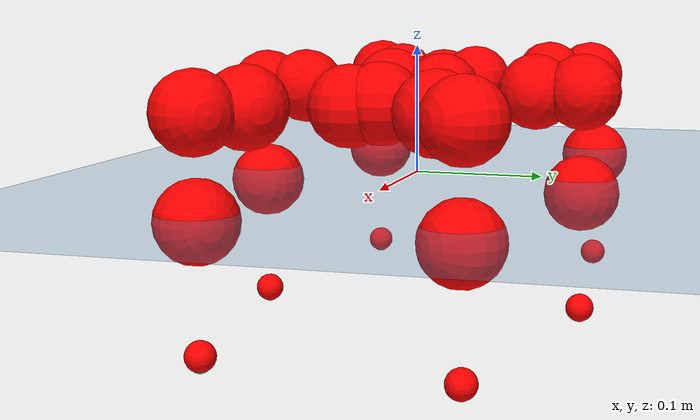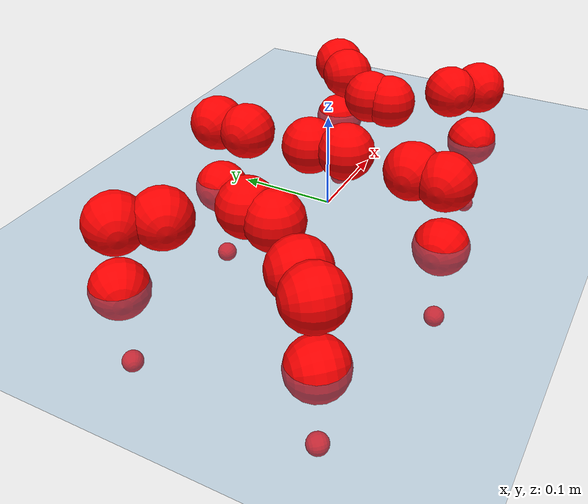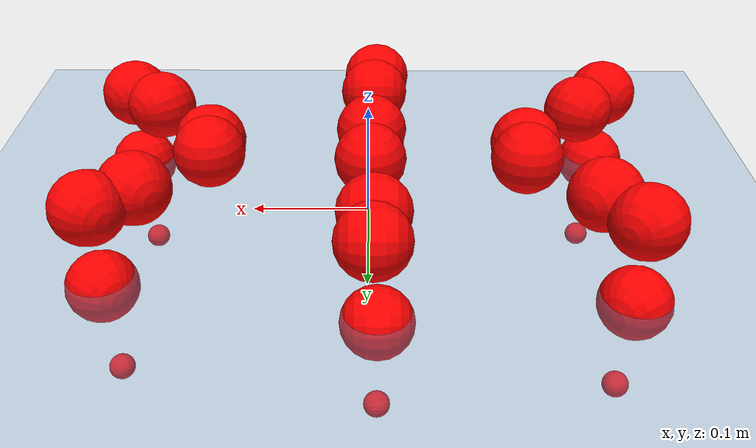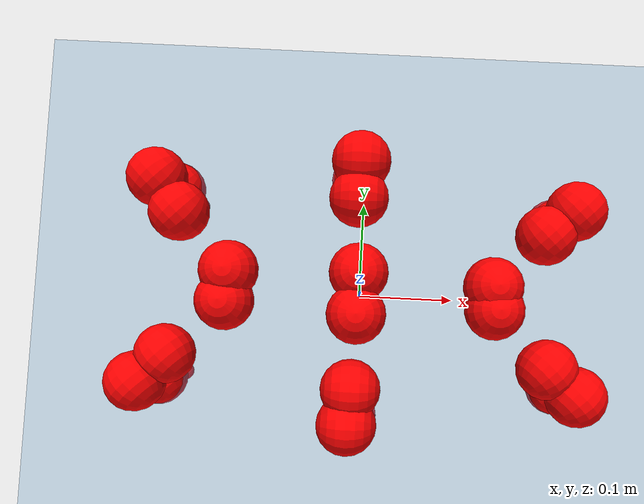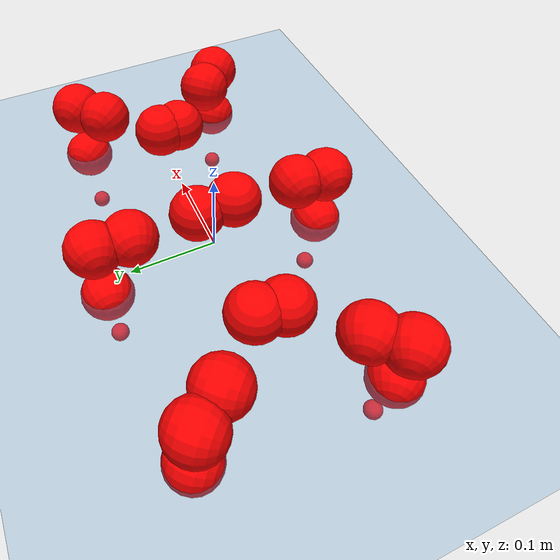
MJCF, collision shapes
<mujoco model="Golem">
  <compiler angle="radian" assetdir="assets" balanceinertia="true" inertiafromgeom="false"/>

  <option timestep="0.005" density="1.2" viscosity="2e-05"/>

  <size nkey="1"/>

  <visual>
    <quality shadowsize="8192"/>
    <map shadowclip="0.5"/>
  </visual>

  <default>
    <default class="/">
      <joint armature="0.01" damping="0.01" frictionloss="0.01"/>
      <geom contype="0" conaffinity="0" group="1" solref="-1000 -80"/>
      <site size="0.01 0.005 0.005" group="5"/>
      <general forcelimited="true" biastype="affine" gainprm="25" biasprm="0 -25 -0.5"/>
      <default class="visual">
        <geom type="mesh" group="2"/>
      </default>
      <default class="collision">
        <geom group="3"/>
      </default>
      <default class="foot">
        <geom size="0.01 0 0" condim="6" group="4" priority="1" solimp="0.015 1 0.01"/>
      </default>
      <default class="reward_collision_sphere">
        <geom group="5" rgba="1 0 0 1"/>
      </default>
    </default>
  </default>

  <asset>
    <texture type="skybox" colorspace="auto" name="//unnamed_texture_0" builtin="gradient" rgb1="0.95 0.95 0.95" rgb2="0.95 0.95 0.95" width="100" height="600"/>
    <texture type="2d" colorspace="auto" name="texplane" builtin="checker" rgb1="0.345 0.575 0.748" rgb2="0.345 0.575 0.748" markrgb="1 1 1" width="512" height="512"/>
    <material name="MatPlane" class="/" texture="texplane" texuniform="true" texrepeat="2 2" specular="0.9"/>
    <mesh name="body" class="/" file="body.stl" scale="0.001 0.001 0.001"/>
    <mesh name="coxa" class="/" file="coxa.stl" scale="0.001 0.001 0.001"/>
    <mesh name="femur" class="/" file="femur.stl" scale="0.001 0.001 0.001"/>
    <mesh name="tibia" class="/" file="tibia.stl" scale="0.001 0.001 0.001"/>
    <mesh name="tarsus" class="/" file="tarsus.stl" scale="0.001 0.001 0.001"/>
  </asset>

  <worldbody>
    <geom name="floor" class="/" size="100 100 0.125" type="plane" group="0" material="MatPlane"/>
    <light name="toplight_shadow" class="/" pos="0 0 5" dir="0.0990148 0.0990148 -0.990148" type="directional" ambient="0.04 0.04 0.04" diffuse="0.55 0.55 0.55" specular="0.12 0.12 0.12"/>
    <light name="toplight_fill" class="/" pos="0 0 5" dir="0.0990148 0.0990148 -0.990148" type="directional" castshadow="false" ambient="0.04 0.04 0.04" diffuse="0.3 0.3 0.3" specular="0.08 0.08 0.08"/>
    <body name="trunk" pos="0.000523395 -0.000515538 0.00130685" quat="1 -8.90605e-05 1.7422e-06 2.83549e-05">
      <inertial pos="0.00259495 0.000288243 -0.0022772" quat="0.999999 0.000742753 -0.00106135 0.000878364" mass="1.49742" diaginertia="0.0045066 5.95027e-05 0.0101797"/>
      <joint name="//unnamed_joint_0" type="free"/>
      <geom name="//unnamed_geom_1" class="/" pos="0 0 0.0640056" quat="1 0 0 0" type="mesh" rgba="0.9 0.9 0.9 1" mesh="body"/>
      <site name="imu" class="/" pos="0.114349 -0.0141069 0.100191" size="0.00737344"/>
      <camera name="track" class="/" pos="0 -0.722476 0" quat="0.707107 0.707107 0 0" mode="trackcom"/>
      <camera name="ego_camera" class="/" pos="0.110592 0 0.100009" quat="-0.5 -0.5 0.5 0.5"/>
      <body name="coxa_RR" pos="-0.151769 -0.0310526 0.0592891" quat="0.382616 8.32469e-05 3.42266e-05 -0.923907">
        <inertial pos="-0.000917572 0.000800675 0.00222334" quat="0.999909 -0.0119233 0.00179324 0.00611605" mass="0.0813424" diaginertia="0.00454376 6.26655e-05 0.0103854"/>
        <joint name="coxa_joint_RR" class="/" pos="0 0 0" axis="0.000445879 -0.000953172 -0.999999" stiffness="0.00283326" range="-3.18323 3.11462" armature="0.00743966" damping="0.00109075" frictionloss="0.00840996"/>
        <geom name="//unnamed_geom_2" class="/" type="mesh" rgba="0.2 0.2 0.2 1" mesh="coxa"/>
        <geom name="//unnamed_geom_3" class="reward_collision_sphere" size="0.0294938" pos="-0.0255212 0 0"/>
        <body name="femur_RR" pos="0.0515967 8.97924e-05 0.00193194" quat="0.500013 -0.500023 0.499907 0.500057">
          <inertial pos="7.26618e-05 0.000450942 -0.00114186" quat="0.999989 0.00332502 -0.00207241 -0.00268944" mass="0.0796436" diaginertia="0.00463991 6.41016e-05 0.00981717"/>
          <joint name="femur_joint_RR" class="/" pos="0 0 0" axis="0.00462053 0.0131529 -0.999903" range="-3.11437 3.1207" armature="0.00677248" damping="0" frictionloss="0.0066452"/>
          <geom name="//unnamed_geom_4" class="/" type="mesh" rgba="0.9 0.9 0.9 1" mesh="femur"/>
          <geom name="//unnamed_geom_5" class="reward_collision_sphere" size="0.0294938"/>
          <body name="tibia_RR" pos="-0.0013338 -0.0385895 0.000627808" quat="0.000744928 0.999999 -0.000830981 0.000514937">
            <inertial pos="0.0022144 0.00281906 -7.91871e-05" quat="0.99999 6.96279e-05 0.00357883 0.00273082" mass="0.0824148" diaginertia="0.00434749 6.12546e-05 0.00979588"/>
            <joint name="tibia_joint_RR" class="/" pos="0 0 0" axis="-0.00388863 0.00390801 0.999985" stiffness="0.00756555" range="-3.11929 3.11997" armature="0.00667526" damping="0.00380192" frictionloss="0.0073123"/>
            <geom name="//unnamed_geom_6" class="/" type="mesh" rgba="0.2 0.2 0.2 1" mesh="tibia"/>
            <geom name="//unnamed_geom_7" class="reward_collision_sphere" size="0.0294938"/>
            <body name="tarsus_RR" pos="0.0732223 0.00210206 -0.00151524" quat="0.999999 0.000534947 -0.000528254 0.00100717">
              <inertial pos="0.0493661 0.000279265 0.000329736" quat="0.503184 0.497617 0.498764 0.500418" mass="0.0835333" diaginertia="0.00476836 6.14807e-05 0.0107218"/>
              <joint name="tarsus_joint_RR" class="/" pos="0 0 0" axis="-0.00951239 -0.00203696 0.999953" stiffness="0.000278728" range="-3.19486 3.13655" armature="0.00686581" damping="0.00808804" frictionloss="0.00757475"/>
              <geom name="//unnamed_geom_8" class="/" type="mesh" rgba="0.9 0.9 0.9 1" mesh="tarsus"/>
              <geom name="foot_1" class="foot" size="0.00784704" pos="0.0952792 0 0" quat="0 -0.707107 0 0.707107"/>
              <geom name="//unnamed_geom_10" class="reward_collision_sphere" size="0.0294938"/>
              <geom name="//unnamed_geom_11" class="reward_collision_sphere" size="0.0110602" pos="0.091451 0 0"/>
              <site name="foot_1" class="foot" pos="0.0952792 0 0" quat="0 -0.707107 0 0.707107" size="0.00737344"/>
            </body>
          </body>
        </body>
      </body>
      <body name="coxa_RM" pos="-0.00322984 -0.0463216 0.066914" quat="0.707033 -0.000259643 -0.000582861 -0.70718">
        <inertial pos="0.00282313 -0.00152348 0.00281451" quat="0.99999 -0.00319002 0.00240022 0.00208537" mass="0.0768564" diaginertia="0.00431044 6.09765e-05 0.00988702"/>
        <joint name="coxa_joint_RM" class="/" pos="0 0 0" axis="-0.00487715 -0.00592478 -0.999971" range="-3.14824 3.17858" armature="0.00752036" damping="0.00931168" frictionloss="0.00644368"/>
        <geom name="//unnamed_geom_12" class="/" type="mesh" rgba="0.2 0.2 0.2 1" mesh="coxa"/>
        <geom name="//unnamed_geom_13" class="reward_collision_sphere" size="0.0294938" pos="-0.0255212 0 0"/>
        <body name="femur_RM" pos="0.0473514 -0.00220897 -0.00218676" quat="0.500039 -0.499916 0.499958 0.500087">
          <inertial pos="0.00276994 0.00119871 -0.000451796" quat="0.99998 0.000688272 -0.00634843 0.000341744" mass="0.0853712" diaginertia="0.0045451 6.12603e-05 0.00995957"/>
          <joint name="femur_joint_RM" class="/" pos="0 0 0" axis="-0.00547008 -0.00974401 -0.999938" range="-3.19637 3.15828" armature="0.00757725" damping="0.0220699" frictionloss="0.00835007"/>
          <geom name="//unnamed_geom_14" class="/" type="mesh" rgba="0.9 0.9 0.9 1" mesh="femur"/>
          <geom name="//unnamed_geom_15" class="reward_collision_sphere" size="0.0294938"/>
          <body name="tibia_RM" pos="0.0010922 -0.0347498 -0.00237237" quat="-0.00013099 1 8.92534e-05 9.69196e-06">
            <inertial pos="0.00254598 -0.00328501 -0.00154779" quat="0.999959 0.00505243 0.00337582 -0.00676591" mass="0.0803698" diaginertia="0.00448307 6.00905e-05 0.0101419"/>
            <joint name="tibia_joint_RM" class="/" pos="0 0 0" axis="0.00508958 -0.00171172 0.999986" range="-3.12774 3.08659" armature="0.0078106" damping="0.0213395" frictionloss="0.00754919"/>
            <geom name="//unnamed_geom_16" class="/" type="mesh" rgba="0.2 0.2 0.2 1" mesh="tibia"/>
            <geom name="//unnamed_geom_17" class="reward_collision_sphere" size="0.0294938"/>
            <body name="tarsus_RM" pos="0.0771221 0.000936163 -0.00152046" quat="1 -0.000148317 0.000353309 2.542e-05">
              <inertial pos="0.0541056 -0.00158725 0.000741069" quat="0.497618 0.490393 0.507462 0.504356" mass="0.0810231" diaginertia="0.00461622 6.3612e-05 0.00967766"/>
              <joint name="tarsus_joint_RM" class="/" pos="0 0 0" axis="-0.00115591 -0.00143973 0.999998" stiffness="0.00569966" range="-3.11999 3.1954" armature="0.00743727" damping="0.00980003" frictionloss="0.00699093"/>
              <geom name="//unnamed_geom_18" class="/" type="mesh" rgba="0.9 0.9 0.9 1" mesh="tarsus"/>
              <geom name="foot_2" class="foot" size="0.00772321" pos="0.0952792 0 0" quat="0 -0.707107 0 0.707107"/>
              <geom name="//unnamed_geom_20" class="reward_collision_sphere" size="0.0294938"/>
              <geom name="//unnamed_geom_21" class="reward_collision_sphere" size="0.0110602" pos="0.091451 0 0"/>
              <site name="foot_2" class="foot" pos="0.0952792 0 0" quat="0 -0.707107 0 0.707107" size="0.00737344"/>
            </body>
          </body>
        </body>
      </body>
      <body name="coxa_RF" pos="0.150157 -0.0286034 0.0630528" quat="0.92397 0.000347641 -0.000349122 -0.382466">
        <inertial pos="-0.00234185 2.54846e-05 0.00313694" quat="0.99992 0.00108864 -0.00997003 0.00766207" mass="0.0787592" diaginertia="0.00462563 6.25035e-05 0.0100469"/>
        <joint name="coxa_joint_RF" class="/" pos="0 0 0" axis="0.00369936 0.00477008 -0.999982" range="-3.19285 3.16287" armature="0.00638157" damping="0.0218447" frictionloss="0.00748353"/>
        <geom name="//unnamed_geom_22" class="/" type="mesh" rgba="0.2 0.2 0.2 1" mesh="coxa"/>
        <geom name="//unnamed_geom_23" class="reward_collision_sphere" size="0.0294938" pos="-0.0255212 0 0"/>
        <body name="femur_RF" pos="0.0502403 -0.00237549 0.00242033" quat="0.499928 -0.499491 0.500462 0.500118">
          <inertial pos="-0.000665478 -0.00247965 0.00127999" quat="0.999988 0.00180066 0.000436279 -0.00444312" mass="0.0788819" diaginertia="0.00430629 6.08872e-05 0.00989523"/>
          <joint name="femur_joint_RF" class="/" pos="0 0 0" axis="-0.00826847 0.00728805 -0.999939" range="-3.08787 3.13658" armature="0.00762537" damping="0" frictionloss="0.00688257"/>
          <geom name="//unnamed_geom_24" class="/" type="mesh" rgba="0.9 0.9 0.9 1" mesh="femur"/>
          <geom name="//unnamed_geom_25" class="reward_collision_sphere" size="0.0294938"/>
          <body name="tibia_RF" pos="0.00129852 -0.0381812 0.00295645" quat="0.00017012 0.999999 -0.00082319 0.000935709">
            <inertial pos="0.00110879 0.00297014 -0.00248237" quat="0.999912 -0.00672634 4.65606e-05 -0.0114016" mass="0.0809159" diaginertia="0.00449977 6.02111e-05 0.00967211"/>
            <joint name="tibia_joint_RF" class="/" pos="0 0 0" axis="-0.00578869 0.00552592 0.999968" stiffness="0.00687254" range="-3.16014 3.14472" armature="0.00651322" damping="0.00344322" frictionloss="0.0074082"/>
            <geom name="//unnamed_geom_26" class="/" type="mesh" rgba="0.2 0.2 0.2 1" mesh="tibia"/>
            <geom name="//unnamed_geom_27" class="reward_collision_sphere" size="0.0294938"/>
            <body name="tarsus_RF" pos="0.0720911 0.000236641 -0.00278485" quat="1 -0.000420683 -0.0003063 0.000468182">
              <inertial pos="0.0500898 2.43634e-05 0.000333131" quat="0.509908 0.499661 0.49438 0.495904" mass="0.0762664" diaginertia="0.00446473 6.0624e-05 0.00973939"/>
              <joint name="tarsus_joint_RF" class="/" pos="0 0 0" axis="-0.00419486 -0.00260755 0.999988" stiffness="0.000819083" range="-3.12118 3.16753" armature="0.00740756" damping="0.0148113" frictionloss="0.00835227"/>
              <geom name="//unnamed_geom_28" class="/" type="mesh" rgba="0.9 0.9 0.9 1" mesh="tarsus"/>
              <geom name="foot_3" class="foot" size="0.00786709" pos="0.0952792 0 0" quat="0 -0.707107 0 0.707107"/>
              <geom name="//unnamed_geom_30" class="reward_collision_sphere" size="0.0294938"/>
              <geom name="//unnamed_geom_31" class="reward_collision_sphere" size="0.0110602" pos="0.091451 0 0"/>
              <site name="foot_3" class="foot" pos="0.0952792 0 0" quat="0 -0.707107 0 0.707107" size="0.00737344"/>
            </body>
          </body>
        </body>
      </body>
      <body name="coxa_LR" pos="-0.148661 0.0352282 0.0627058" quat="0.38223 0.000527236 -0.000165726 0.924067">
        <inertial pos="0.00162015 -0.00168642 -0.00269001" quat="0.999934 -0.000696693 -0.0105645 0.00438954" mass="0.0819772" diaginertia="0.00453314 6.26378e-05 0.0101889"/>
        <joint name="coxa_joint_LR" class="/" pos="0 0 0" axis="-0.00328877 -0.000677912 -0.999994" range="-3.15701 3.12271" armature="0.00639547" damping="0.00944001" frictionloss="0.00755413"/>
        <geom name="//unnamed_geom_32" class="/" type="mesh" rgba="0.2 0.2 0.2 1" mesh="coxa"/>
        <geom name="//unnamed_geom_33" class="reward_collision_sphere" size="0.0294938" pos="-0.0255212 0 0"/>
        <body name="femur_LR" pos="0.0503458 -0.00277048 0.00204457" quat="0.500155 -0.499911 0.499477 0.500456">
          <inertial pos="0.00241837 -0.000127458 -0.00176891" quat="0.999996 0.00202489 0.00101188 0.00151695" mass="0.0808383" diaginertia="0.00448873 6.18653e-05 0.0104553"/>
          <joint name="femur_joint_LR" class="/" pos="0 0 0" axis="0.00315865 0.00140773 0.999994" range="-3.08417 3.14107" armature="0.00785106" damping="0.0037245" frictionloss="0.00754237"/>
          <geom name="//unnamed_geom_34" class="/" type="mesh" rgba="0.9 0.9 0.9 1" mesh="femur"/>
          <geom name="//unnamed_geom_35" class="reward_collision_sphere" size="0.0294938"/>
          <body name="tibia_LR" pos="0.00118943 -0.0404395 -0.00643583" quat="-1.77823e-05 1 5.46182e-05 -3.90024e-05">
            <inertial pos="0.00237373 -0.00370495 0.00381648" quat="0.999969 -0.00375508 0.00130345 -0.00681386" mass="0.0767755" diaginertia="0.00441288 6.30103e-05 0.00994368"/>
            <joint name="tibia_joint_LR" class="/" pos="0 0 0" axis="0.000605346 -0.000678005 -1" range="-3.10398 3.10644" armature="0.00701106" damping="0.0130394" frictionloss="0.00633039"/>
            <geom name="//unnamed_geom_36" class="/" type="mesh" rgba="0.2 0.2 0.2 1" mesh="tibia"/>
            <geom name="//unnamed_geom_37" class="reward_collision_sphere" size="0.0294938"/>
            <body name="tarsus_LR" pos="0.0740334 0.00537271 0.00256428" quat="1 0.000676656 0.000218748 -0.000211986">
              <inertial pos="0.0502117 -0.00179635 -0.000532671" quat="0.50106 0.497937 0.497462 0.503517" mass="0.0815531" diaginertia="0.00452466 6.0288e-05 0.0100232"/>
              <joint name="tarsus_joint_LR" class="/" pos="0 0 0" axis="0.0049927 -0.00939145 -0.999943" range="-3.11558 3.131" armature="0.00756587" damping="0.0113201" frictionloss="0.00736594"/>
              <geom name="//unnamed_geom_38" class="/" type="mesh" rgba="0.9 0.9 0.9 1" mesh="tarsus"/>
              <geom name="foot_4" class="foot" size="0.00692685" pos="0.0952792 0 0" quat="0.707107 0 -0.707107 0"/>
              <geom name="//unnamed_geom_40" class="reward_collision_sphere" size="0.0294938"/>
              <geom name="//unnamed_geom_41" class="reward_collision_sphere" size="0.0110602" pos="0.091451 0 0"/>
              <site name="foot_4" class="foot" pos="0.0952792 0 0" quat="0.707107 0 -0.707107 0" size="0.00737344"/>
            </body>
          </body>
        </body>
      </body>
      <body name="coxa_LM" pos="-0.00247029 0.0461036 0.0634775" quat="0.707081 -1.0744e-05 -1.22472e-05 0.707132">
        <inertial pos="-0.00218878 -0.000114443 0.00294142" quat="0.999996 0.00221242 -0.000266059 -0.00163336" mass="0.077985" diaginertia="0.0044879 6.15284e-05 0.0103517"/>
        <joint name="coxa_joint_LM" class="/" pos="0 0 0" axis="0.00431072 0.00176833 -0.999989" stiffness="0.00191602" range="-3.18084 3.12413" armature="0.00631219" damping="0.0122495" frictionloss="0.0081957"/>
        <geom name="//unnamed_geom_42" class="/" type="mesh" rgba="0.2 0.2 0.2 1" mesh="coxa"/>
        <geom name="//unnamed_geom_43" class="reward_collision_sphere" size="0.0294938" pos="-0.0255212 0 0"/>
        <body name="femur_LM" pos="0.0481932 0.00313075 0.000572113" quat="0.49994 -0.500227 0.499695 0.500137">
          <inertial pos="-0.000152018 -0.00258639 -0.000613515" quat="0.999901 -0.00167045 -0.0125481 -0.006123" mass="0.0769936" diaginertia="0.00431342 6.0303e-05 0.00979266"/>
          <joint name="femur_joint_LM" class="/" pos="0 0 0" axis="-0.00688519 0.0132291 0.999889" stiffness="0.00896425" range="-3.11394 3.15526" armature="0.00627716" damping="0.0136685" frictionloss="0.00838823"/>
          <geom name="//unnamed_geom_44" class="/" type="mesh" rgba="0.9 0.9 0.9 1" mesh="femur"/>
          <geom name="//unnamed_geom_45" class="reward_collision_sphere" size="0.0294938"/>
          <body name="tibia_LM" pos="-0.000671433 -0.037316 -0.000848896" quat="-1.14013e-05 1 1.13167e-05 -6.93915e-06">
            <inertial pos="-0.000791479 7.79625e-05 -0.000523297" quat="1 0.000485056 0.000329547 -4.1647e-05" mass="0.0831909" diaginertia="0.0043822 6.14789e-05 0.010003"/>
            <joint name="tibia_joint_LM" class="/" pos="0 0 0" axis="-0.00185733 0.00401447 -0.99999" stiffness="0.000895307" range="-3.09064 3.14186" armature="0.00740754" damping="0" frictionloss="0.0063286"/>
            <geom name="//unnamed_geom_46" class="/" type="mesh" rgba="0.2 0.2 0.2 1" mesh="tibia"/>
            <geom name="//unnamed_geom_47" class="reward_collision_sphere" size="0.0294938"/>
            <body name="tarsus_LM" pos="0.0787913 -0.000715557 -0.00328954" quat="1 0.00057465 -5.45303e-05 0.000186157">
              <inertial pos="0.0484601 -0.00129542 -0.000245592" quat="0.498852 0.500536 0.498645 0.50196" mass="0.0776506" diaginertia="0.00442826 6.17722e-05 0.010298"/>
              <joint name="tarsus_joint_LM" class="/" pos="0 0 0" axis="-0.0103394 1.26372e-05 -0.999947" range="-3.10511 3.08832" armature="0.00746531" damping="0.0069045" frictionloss="0.0066008"/>
              <geom name="//unnamed_geom_48" class="/" type="mesh" rgba="0.9 0.9 0.9 1" mesh="tarsus"/>
              <geom name="foot_5" class="foot" size="0.00746383" pos="0.0952792 0 0" quat="0.707107 0 -0.707107 0"/>
              <geom name="//unnamed_geom_50" class="reward_collision_sphere" size="0.0294938"/>
              <geom name="//unnamed_geom_51" class="reward_collision_sphere" size="0.0110602" pos="0.091451 0 0"/>
              <site name="foot_5" class="foot" pos="0.0952792 0 0" quat="0.707107 0 -0.707107 0" size="0.00737344"/>
            </body>
          </body>
        </body>
      </body>
      <body name="coxa_LF" pos="0.147859 0.0303517 0.0651169" quat="0.923657 -0.000394218 0.00118587 0.383219">
        <inertial pos="0.000477404 -0.00242199 0.000195167" quat="0.999978 0.00475885 0.00465277 -0.00037754" mass="0.0771028" diaginertia="0.00432674 5.83561e-05 0.00965062"/>
        <joint name="coxa_joint_LF" class="/" pos="0 0 0" axis="0.000531514 -0.00137269 -0.999999" range="-3.19218 3.09189" armature="0.00766994" damping="0.00130856" frictionloss="0.00841552"/>
        <geom name="//unnamed_geom_52" class="/" type="mesh" rgba="0.2 0.2 0.2 1" mesh="coxa"/>
        <geom name="//unnamed_geom_53" class="reward_collision_sphere" size="0.0294938" pos="-0.0255212 0 0"/>
        <body name="femur_LF" pos="0.0475335 0.00185733 -0.000448753" quat="0.500703 -0.498738 0.500252 0.500304">
          <inertial pos="0.00107565 -0.000663088 0.000144708" quat="0.999999 0.00161558 0.000419642 0.000259235" mass="0.0803439" diaginertia="0.00434893 6.05193e-05 0.00965656"/>
          <joint name="femur_joint_LF" class="/" pos="0 0 0" axis="0.00232649 -0.0154198 0.999878" range="-3.16085 3.08437" armature="0.00768819" damping="0.0132571" frictionloss="0.00734739"/>
          <geom name="//unnamed_geom_54" class="/" type="mesh" rgba="0.9 0.9 0.9 1" mesh="femur"/>
          <geom name="//unnamed_geom_55" class="reward_collision_sphere" size="0.0294938"/>
          <body name="tibia_LF" pos="0.000605019 -0.0386816 -0.00263496" quat="-2.71729e-05 1 0.00014904 4.97765e-05">
            <inertial pos="0.000736361 0.000248216 -0.00114049" quat="0.999901 -0.00422204 0.012508 -0.00485835" mass="0.0828983" diaginertia="0.00434697 5.93326e-05 0.00964796"/>
            <joint name="tibia_joint_LF" class="/" pos="0 0 0" axis="0.0104426 0.0112321 -0.999882" stiffness="0.00733883" range="-3.15085 3.11831" armature="0.00849907" damping="0.0099445" frictionloss="0.00638305"/>
            <geom name="//unnamed_geom_56" class="/" type="mesh" rgba="0.2 0.2 0.2 1" mesh="tibia"/>
            <geom name="//unnamed_geom_57" class="reward_collision_sphere" size="0.0294938"/>
            <body name="tarsus_LF" pos="0.0772119 0.001839 0.00227621" quat="1 6.93501e-06 -0.000335275 9.62073e-05">
              <inertial pos="0.0491418 0.00128734 0.000649966" quat="0.499361 0.498652 0.499859 0.502121" mass="0.077059" diaginertia="0.00442451 5.96096e-05 0.00962035"/>
              <joint name="tarsus_joint_LF" class="/" pos="0 0 0" axis="-0.0122322 -0.00314725 -0.99992" stiffness="0.029802" range="-3.13487 3.19493" armature="0.00761414" damping="0.0274548" frictionloss="0.00728631"/>
              <geom name="//unnamed_geom_58" class="/" type="mesh" rgba="0.9 0.9 0.9 1" mesh="tarsus"/>
              <geom name="foot_6" class="foot" size="0.00728425" pos="0.0952792 0 0" quat="0.707107 0 -0.707107 0"/>
              <geom name="//unnamed_geom_60" class="reward_collision_sphere" size="0.0294938"/>
              <geom name="//unnamed_geom_61" class="reward_collision_sphere" size="0.0110602" pos="0.091451 0 0"/>
              <site name="foot_6" class="foot" pos="0.0952792 0 0" quat="0.707107 0 -0.707107 0" size="0.00737344"/>
            </body>
          </body>
        </body>
      </body>
    </body>
  </worldbody>

  <contact>
    <pair class="/" geom1="floor" geom2="foot_1" name="//unnamed_contact_0"/>
    <pair class="/" geom1="floor" geom2="foot_2" name="//unnamed_contact_1"/>
    <pair class="/" geom1="floor" geom2="foot_3" name="//unnamed_contact_2"/>
    <pair class="/" geom1="floor" geom2="foot_4" name="//unnamed_contact_3"/>
    <pair class="/" geom1="floor" geom2="foot_5" name="//unnamed_contact_4"/>
    <pair class="/" geom1="floor" geom2="foot_6" name="//unnamed_contact_5"/>
  </contact>

  <actuator>
    <general name="coxa_joint_RR" class="/" joint="coxa_joint_RR" forcerange="-5.89167 5.89167" gainprm="18.0847" biasprm="0 -18.0847 -0.369533"/>
    <general name="femur_joint_RR" class="/" joint="femur_joint_RR" forcerange="-5.91816 5.91816" gainprm="18.0847" biasprm="0 -18.0847 -0.369533"/>
    <general name="tibia_joint_RR" class="/" joint="tibia_joint_RR" forcerange="-5.11783 5.11783" gainprm="18.0847" biasprm="0 -18.0847 -0.369533"/>
    <general name="tarsus_joint_RR" class="/" joint="tarsus_joint_RR" forcerange="-5.51253 5.51253" gainprm="18.0847" biasprm="0 -18.0847 -0.369533"/>
    <general name="coxa_joint_RM" class="/" joint="coxa_joint_RM" forcerange="-5.88104 5.88104" gainprm="18.0847" biasprm="0 -18.0847 -0.369533"/>
    <general name="femur_joint_RM" class="/" joint="femur_joint_RM" forcerange="-5.78297 5.78297" gainprm="18.0847" biasprm="0 -18.0847 -0.369533"/>
    <general name="tibia_joint_RM" class="/" joint="tibia_joint_RM" forcerange="-4.8362 4.8362" gainprm="18.0847" biasprm="0 -18.0847 -0.369533"/>
    <general name="tarsus_joint_RM" class="/" joint="tarsus_joint_RM" forcerange="-5.48954 5.48954" gainprm="18.0847" biasprm="0 -18.0847 -0.369533"/>
    <general name="coxa_joint_RF" class="/" joint="coxa_joint_RF" forcerange="-5.66206 5.66206" gainprm="18.0847" biasprm="0 -18.0847 -0.369533"/>
    <general name="femur_joint_RF" class="/" joint="femur_joint_RF" forcerange="-5.11091 5.11091" gainprm="18.0847" biasprm="0 -18.0847 -0.369533"/>
    <general name="tibia_joint_RF" class="/" joint="tibia_joint_RF" forcerange="-4.85906 4.85906" gainprm="18.0847" biasprm="0 -18.0847 -0.369533"/>
    <general name="tarsus_joint_RF" class="/" joint="tarsus_joint_RF" forcerange="-5.17273 5.17273" gainprm="18.0847" biasprm="0 -18.0847 -0.369533"/>
    <general name="coxa_joint_LR" class="/" joint="coxa_joint_LR" forcerange="-5.94904 5.94904" gainprm="18.0847" biasprm="0 -18.0847 -0.369533"/>
    <general name="femur_joint_LR" class="/" joint="femur_joint_LR" forcerange="-4.85416 4.85416" gainprm="18.0847" biasprm="0 -18.0847 -0.369533"/>
    <general name="tibia_joint_LR" class="/" joint="tibia_joint_LR" forcerange="-4.84729 4.84729" gainprm="18.0847" biasprm="0 -18.0847 -0.369533"/>
    <general name="tarsus_joint_LR" class="/" joint="tarsus_joint_LR" forcerange="-5.44482 5.44482" gainprm="18.0847" biasprm="0 -18.0847 -0.369533"/>
    <general name="coxa_joint_LM" class="/" joint="coxa_joint_LM" forcerange="-5.40871 5.40871" gainprm="18.0847" biasprm="0 -18.0847 -0.369533"/>
    <general name="femur_joint_LM" class="/" joint="femur_joint_LM" forcerange="-5.35227 5.35227" gainprm="18.0847" biasprm="0 -18.0847 -0.369533"/>
    <general name="tibia_joint_LM" class="/" joint="tibia_joint_LM" forcerange="-5.26438 5.26438" gainprm="18.0847" biasprm="0 -18.0847 -0.369533"/>
    <general name="tarsus_joint_LM" class="/" joint="tarsus_joint_LM" forcerange="-5.34316 5.34316" gainprm="18.0847" biasprm="0 -18.0847 -0.369533"/>
    <general name="coxa_joint_LF" class="/" joint="coxa_joint_LF" forcerange="-5.77285 5.77285" gainprm="18.0847" biasprm="0 -18.0847 -0.369533"/>
    <general name="femur_joint_LF" class="/" joint="femur_joint_LF" forcerange="-5.73849 5.73849" gainprm="18.0847" biasprm="0 -18.0847 -0.369533"/>
    <general name="tibia_joint_LF" class="/" joint="tibia_joint_LF" forcerange="-5.47113 5.47113" gainprm="18.0847" biasprm="0 -18.0847 -0.369533"/>
    <general name="tarsus_joint_LF" class="/" joint="tarsus_joint_LF" forcerange="-5.04675 5.04675" gainprm="18.0847" biasprm="0 -18.0847 -0.369533"/>
  </actuator>

  <sensor>
    <gyro site="imu" name="imu_angular_velocity"/>
    <velocimeter site="imu" name="imu_linear_velocity"/>
    <framelinvel objtype="site" objname="foot_1" name="foot_1_global_linear_velocity"/>
    <framelinvel objtype="site" objname="foot_2" name="foot_2_global_linear_velocity"/>
    <framelinvel objtype="site" objname="foot_3" name="foot_3_global_linear_velocity"/>
    <framelinvel objtype="site" objname="foot_4" name="foot_4_global_linear_velocity"/>
    <framelinvel objtype="site" objname="foot_5" name="foot_5_global_linear_velocity"/>
    <framelinvel objtype="site" objname="foot_6" name="foot_6_global_linear_velocity"/>
  </sensor>

  <keyframe>
    <key name="home" qpos="0 0 0.1457 1 0 0 0 0 0 0 0 0 0 0 0 0 0 0 0 0 0 0 0 0 0 0 0 0 0 0 0"/>
  </keyframe>
</mujoco>
